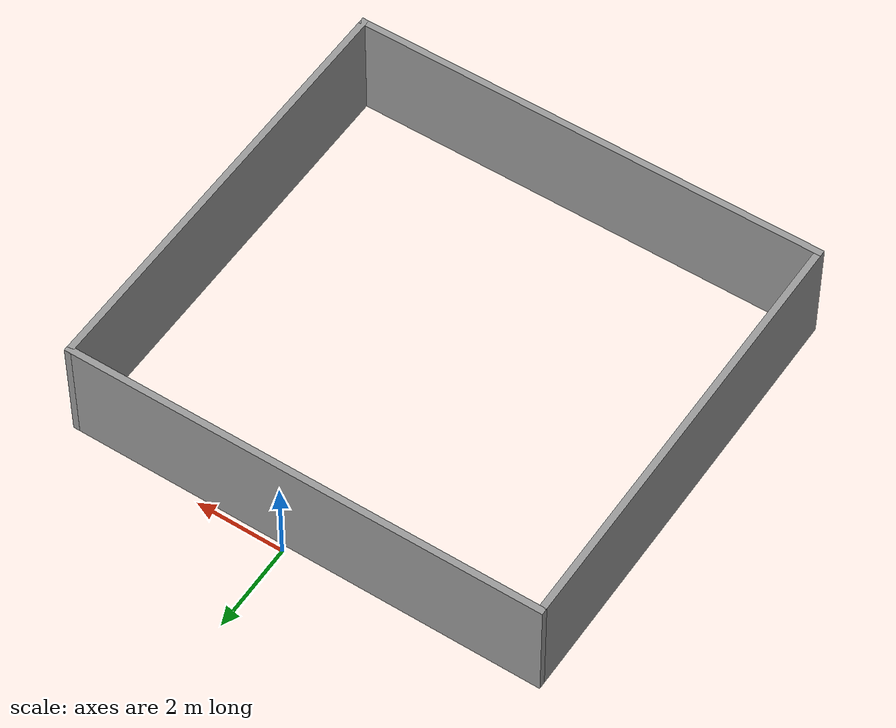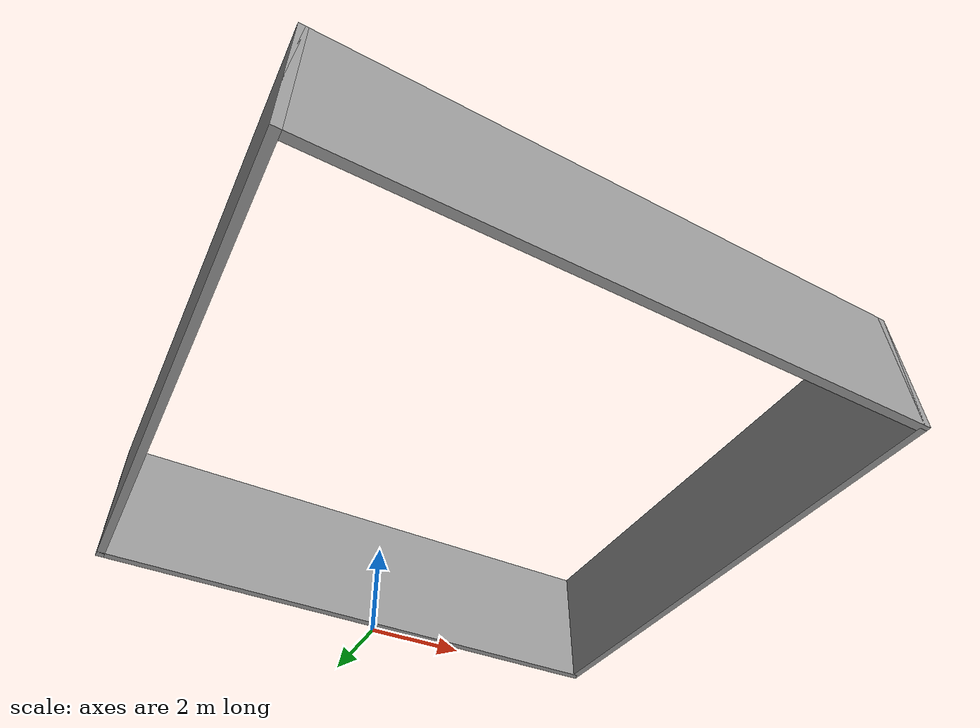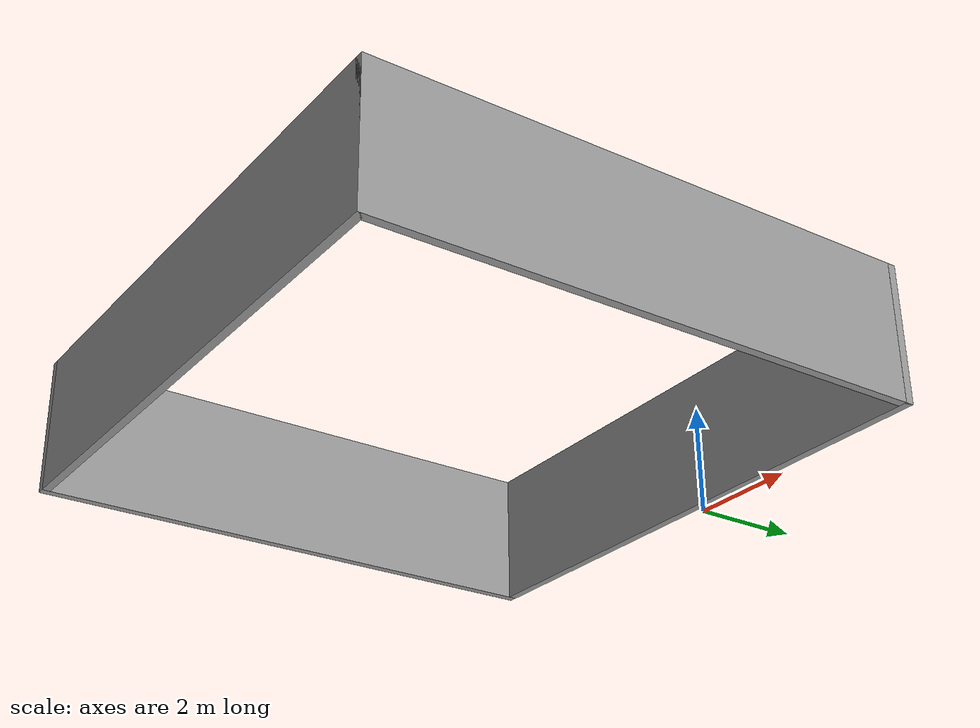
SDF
<?xml version='1.0'?>
<sdf version='1.6'>
  <model name='10x10Box'>
    <pose frame=''>-0.34 -5.125 0 0 -0 0</pose>
    <link name='Wall_1'>
      <collision name='Wall_1_Collision'>
        <geometry>
          <box>
            <size>10 0.15 2.5</size>
          </box>
        </geometry>
        <pose frame=''>0 0 1.25 0 -0 0</pose>
      </collision>
      <visual name='Wall_1_Visual'>
        <pose frame=''>0 0 1.25 0 -0 0</pose>
        <geometry>
          <box>
            <size>10 0.15 2.5</size>
          </box>
        </geometry>
        <material>
          <script>
            <uri>file://media/materials/scripts/gazebo.material</uri>
            <name>Gazebo/Grey</name>
          </script>
          <ambient>1 1 1 1</ambient>
        </material>
        <meta>
          <layer>0</layer>
        </meta>
      </visual>
      <pose frame=''>-5.3 -0 0 0 -0 -1.5708</pose>
    </link>
    <link name='Wall_2'>
      <collision name='Wall_2_Collision'>
        <geometry>
          <box>
            <size>10.75 0.15 2.5</size>
          </box>
        </geometry>
        <pose frame=''>0 0 1.25 0 -0 0</pose>
      </collision>
      <visual name='Wall_2_Visual'>
        <pose frame=''>0 0 1.25 0 -0 0</pose>
        <geometry>
          <box>
            <size>10.75 0.15 2.5</size>
          </box>
        </geometry>
        <material>
          <script>
            <uri>file://media/materials/scripts/gazebo.material</uri>
            <name>Gazebo/Grey</name>
          </script>
          <ambient>1 1 1 1</ambient>
        </material>
        <meta>
          <layer>0</layer>
        </meta>
      </visual>
      <pose frame=''>-0 -4.925 0 0 -0 0</pose>
    </link>
    <link name='Wall_3'>
      <collision name='Wall_3_Collision'>
        <geometry>
          <box>
            <size>10 0.15 2.5</size>
          </box>
        </geometry>
        <pose frame=''>0 0 1.25 0 -0 0</pose>
      </collision>
      <visual name='Wall_3_Visual'>
        <pose frame=''>0 0 1.25 0 -0 0</pose>
        <geometry>
          <box>
            <size>10 0.15 2.5</size>
          </box>
        </geometry>
        <material>
          <script>
            <uri>file://media/materials/scripts/gazebo.material</uri>
            <name>Gazebo/Grey</name>
          </script>
          <ambient>1 1 1 1</ambient>
        </material>
        <meta>
          <layer>0</layer>
        </meta>
      </visual>
      <pose frame=''>5.3 -0 0 0 -0 1.5708</pose>
    </link>
    <link name='Wall_4'>
      <collision name='Wall_4_Collision'>
        <geometry>
          <box>
            <size>10.75 0.15 2.5</size>
          </box>
        </geometry>
        <pose frame=''>0 0 1.25 0 -0 0</pose>
      </collision>
      <visual name='Wall_4_Visual'>
        <pose frame=''>0 0 1.25 0 -0 0</pose>
        <geometry>
          <box>
            <size>10.75 0.15 2.5</size>
          </box>
        </geometry>
        <material>
          <script>
            <uri>file://media/materials/scripts/gazebo.material</uri>
            <name>Gazebo/Grey</name>
          </script>
          <ambient>1 1 1 1</ambient>
        </material>
        <meta>
          <layer>0</layer>
        </meta>
      </visual>
      <pose frame=''>-0 4.925 0 0 -0 3.14159</pose>
    </link>
    <static>1</static>
  </model>
</sdf>
